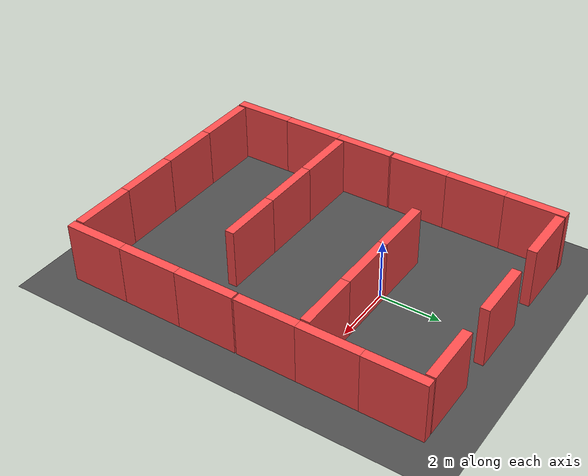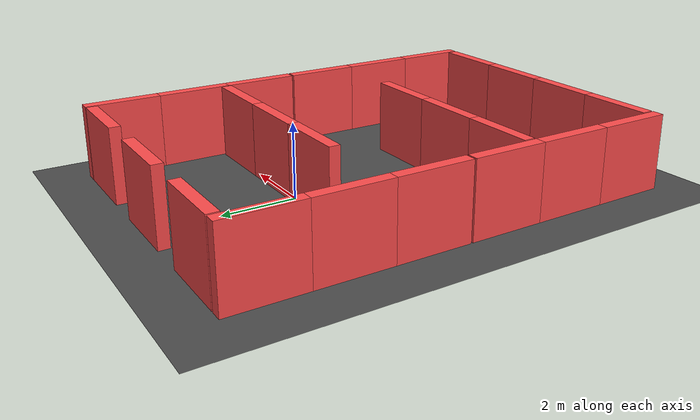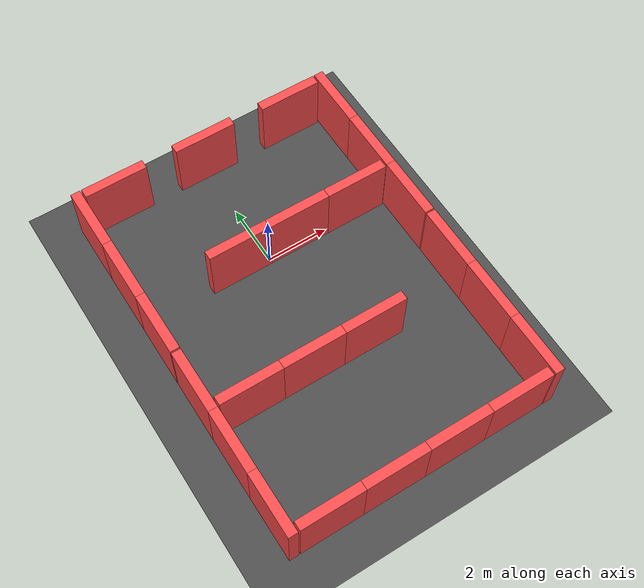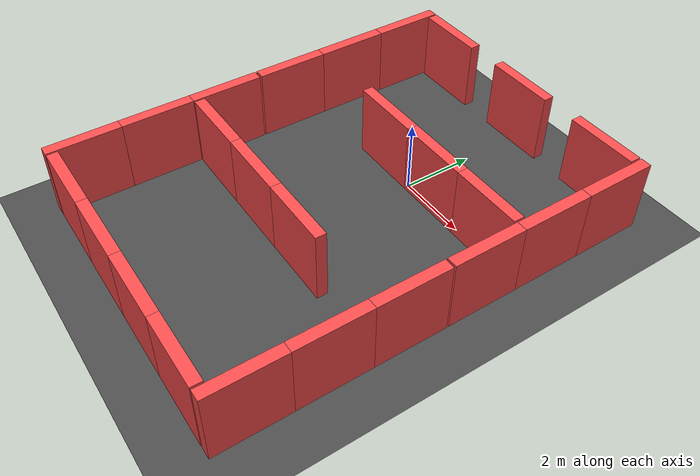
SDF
<sdf version="1.6">
 <world name="default">
  <light name="sun" type="directional">
   <pose>0 0 30 0 -0 0</pose>
   <diffuse>0.8 0.8 0.8 1</diffuse>
   <specular>0.1 0.1 0.1 1</specular>
   <attenuation>
    <range>100</range>
    <constant>0.9</constant>
    <linear>0.01</linear>
    <quadratic>0.001</quadratic>
   </attenuation>
   <direction>0 0 -1</direction>
  </light>
  <physics name="default_physics" default="0" type="ode">
   <max_step_size>0.001</max_step_size>
   <real_time_factor>1</real_time_factor>
   <real_time_update_rate>1000</real_time_update_rate>
  </physics>
  <gravity>0 0 -9.8</gravity>
  <magnetic_field>6e-06 2.3e-05 -4.2e-05</magnetic_field>
  <atmosphere type="adiabatic"/>
  <scene><ambient>0.4 0.4 0.4 1</ambient><background>0.7 0.7 0.7 1</background><shadows>1</shadows></scene>
  <spherical_coordinates>
   <surface_model>EARTH_WGS84</surface_model>
   <latitude_deg>0</latitude_deg>
   <longitude_deg>0</longitude_deg>
   <elevation>0</elevation>
   <heading_deg>0</heading_deg>
  </spherical_coordinates>
  <model name="ground_plane">
   <static>1</static>
   <link name="link">
    <collision name="collision">
     <geometry><plane><normal>0 0 1</normal><size>20 20</size></plane></geometry>
     <surface><friction><ode><mu>100</mu><mu2>50</mu2></ode></friction></surface>
    </collision>
    <visual name="visual">
     <cast_shadows>0</cast_shadows>
     <geometry><plane><normal>0 0 1</normal><size>20 20</size></plane></geometry>
     <material>
      <script>
       <uri>model://asphalt_plane/materials/scripts</uri>
       <uri>model://asphalt_plane/materials/textures</uri>
       <name>vrc/asphalt</name>
      </script>
     </material>
    </visual>
   </link>
  </model>
  <model name="red_4wall">
   <link name="link_0">
    <pose>0 -1 1 0 -0 0</pose>
    <inertial>
     <mass>5</mass>
     <inertia>
      <ixx>0.497692</ixx>
      <ixy>0</ixy>
      <ixz>0</ixz>
      <iyy>0.196615</iyy>
      <iyz>0</iyz>
      <izz>0.312713</izz>
     </inertia>
    </inertial>
    <visual name="visual">
     <geometry><box><size>0.3 2 2</size></box></geometry>
     <material>
      <lighting>1</lighting>
      <script><uri>file://media/materials/scripts/gazebo.material</uri><name>Gazebo/Grey</name></script>
      <ambient>1 0.3 0.3 1</ambient>
      <diffuse>0.7 0.7 0.7 1</diffuse>
      <specular>0.01 0.01 0.01 1</specular>
      <emissive>0 0 0 1</emissive>
      <shader type="vertex"><normal_map>__default__</normal_map></shader>
     </material>
    </visual>
    <collision name="collision">
     <geometry><box><size>0.3 2 2</size></box></geometry>
     <surface>
      <friction>
       <ode><mu>1</mu><mu2>1</mu2><fdir1>0 0 0</fdir1><slip1>0</slip1><slip2>0</slip2></ode>
       <torsional>
        <coefficient>1</coefficient>
        <patch_radius>0</patch_radius>
        <surface_radius>0</surface_radius>
        <use_patch_radius>1</use_patch_radius>
        <ode><slip>0</slip></ode>
       </torsional>
      </friction>
      <bounce><restitution_coefficient>0</restitution_coefficient><threshold>1e+06</threshold></bounce>
      <contact>
       <collide_without_contact>0</collide_without_contact>
       <collide_without_contact_bitmask>1</collide_without_contact_bitmask>
       <collide_bitmask>1</collide_bitmask>
       <ode>
        <soft_cfm>0</soft_cfm>
        <soft_erp>0.2</soft_erp>
        <kp>1e+13</kp>
        <kd>1</kd>
        <max_vel>0.01</max_vel>
        <min_depth>0</min_depth>
       </ode>
       <bullet>
        <split_impulse>1</split_impulse>
        <split_impulse_penetration_threshold>-0.01</split_impulse_penetration_threshold>
        <soft_cfm>0</soft_cfm>
        <soft_erp>0.2</soft_erp>
        <kp>1e+13</kp>
        <kd>1</kd>
       </bullet>
      </contact>
     </surface>
    </collision>
   </link>
   <link name="link_0_clone">
    <pose>0 -3 1 0 -0 0</pose>
    <inertial>
     <mass>5</mass>
     <inertia>
      <ixx>0.497692</ixx>
      <ixy>0</ixy>
      <ixz>0</ixz>
      <iyy>0.196615</iyy>
      <iyz>0</iyz>
      <izz>0.312713</izz>
     </inertia>
    </inertial>
    <visual name="visual">
     <geometry><box><size>0.3 2 2</size></box></geometry>
     <material>
      <lighting>1</lighting>
      <script><uri>file://media/materials/scripts/gazebo.material</uri><name>Gazebo/Grey</name></script>
      <ambient>1 0.3 0.3 1</ambient>
      <diffuse>0.7 0.7 0.7 1</diffuse>
      <specular>0.01 0.01 0.01 1</specular>
      <emissive>0 0 0 1</emissive>
      <shader type="vertex"><normal_map>__default__</normal_map></shader>
     </material>
    </visual>
    <collision name="collision">
     <geometry><box><size>0.3 2 2</size></box></geometry>
     <surface>
      <friction>
       <ode><mu>1</mu><mu2>1</mu2><fdir1>0 0 0</fdir1><slip1>0</slip1><slip2>0</slip2></ode>
       <torsional>
        <coefficient>1</coefficient>
        <patch_radius>0</patch_radius>
        <surface_radius>0</surface_radius>
        <use_patch_radius>1</use_patch_radius>
        <ode><slip>0</slip></ode>
       </torsional>
      </friction>
      <bounce><restitution_coefficient>0</restitution_coefficient><threshold>1e+06</threshold></bounce>
      <contact>
       <collide_without_contact>0</collide_without_contact>
       <collide_without_contact_bitmask>1</collide_without_contact_bitmask>
       <collide_bitmask>1</collide_bitmask>
       <ode>
        <soft_cfm>0</soft_cfm>
        <soft_erp>0.2</soft_erp>
        <kp>1e+13</kp>
        <kd>1</kd>
        <max_vel>0.01</max_vel>
        <min_depth>0</min_depth>
       </ode>
       <bullet>
        <split_impulse>1</split_impulse>
        <split_impulse_penetration_threshold>-0.01</split_impulse_penetration_threshold>
        <soft_cfm>0</soft_cfm>
        <soft_erp>0.2</soft_erp>
        <kp>1e+13</kp>
        <kd>1</kd>
       </bullet>
      </contact>
     </surface>
    </collision>
   </link>
   <link name="link_0_clone_0">
    <pose>-0 1 1 0 -0 0</pose>
    <inertial>
     <mass>5</mass>
     <inertia>
      <ixx>0.497692</ixx>
      <ixy>0</ixy>
      <ixz>0</ixz>
      <iyy>0.196615</iyy>
      <iyz>0</iyz>
      <izz>0.312713</izz>
     </inertia>
    </inertial>
    <visual name="visual">
     <geometry><box><size>0.3 2 2</size></box></geometry>
     <material>
      <lighting>1</lighting>
      <script><uri>file://media/materials/scripts/gazebo.material</uri><name>Gazebo/Grey</name></script>
      <ambient>1 0.3 0.3 1</ambient>
      <diffuse>0.7 0.7 0.7 1</diffuse>
      <specular>0.01 0.01 0.01 1</specular>
      <emissive>0 0 0 1</emissive>
      <shader type="vertex"><normal_map>__default__</normal_map></shader>
     </material>
    </visual>
    <collision name="collision">
     <geometry><box><size>0.3 2 2</size></box></geometry>
     <surface>
      <friction>
       <ode><mu>1</mu><mu2>1</mu2><fdir1>0 0 0</fdir1><slip1>0</slip1><slip2>0</slip2></ode>
       <torsional>
        <coefficient>1</coefficient>
        <patch_radius>0</patch_radius>
        <surface_radius>0</surface_radius>
        <use_patch_radius>1</use_patch_radius>
        <ode><slip>0</slip></ode>
       </torsional>
      </friction>
      <bounce><restitution_coefficient>0</restitution_coefficient><threshold>1e+06</threshold></bounce>
      <contact>
       <collide_without_contact>0</collide_without_contact>
       <collide_without_contact_bitmask>1</collide_without_contact_bitmask>
       <collide_bitmask>1</collide_bitmask>
       <ode>
        <soft_cfm>0</soft_cfm>
        <soft_erp>0.2</soft_erp>
        <kp>1e+13</kp>
        <kd>1</kd>
        <max_vel>0.01</max_vel>
        <min_depth>0</min_depth>
       </ode>
       <bullet>
        <split_impulse>1</split_impulse>
        <split_impulse_penetration_threshold>-0.01</split_impulse_penetration_threshold>
        <soft_cfm>0</soft_cfm>
        <soft_erp>0.2</soft_erp>
        <kp>1e+13</kp>
        <kd>1</kd>
       </bullet>
      </contact>
     </surface>
    </collision>
   </link>
   <link name="link_0_clone_1">
    <pose>-0 3 1 0 -0 0</pose>
    <inertial>
     <mass>5</mass>
     <inertia>
      <ixx>0.497692</ixx>
      <ixy>0</ixy>
      <ixz>0</ixz>
      <iyy>0.196615</iyy>
      <iyz>0</iyz>
      <izz>0.312713</izz>
     </inertia>
    </inertial>
    <visual name="visual">
     <geometry><box><size>0.3 2 2</size></box></geometry>
     <material>
      <lighting>1</lighting>
      <script><uri>file://media/materials/scripts/gazebo.material</uri><name>Gazebo/Grey</name></script>
      <ambient>1 0.3 0.3 1</ambient>
      <diffuse>0.7 0.7 0.7 1</diffuse>
      <specular>0.01 0.01 0.01 1</specular>
      <emissive>0 0 0 1</emissive>
      <shader type="vertex"><normal_map>__default__</normal_map></shader>
     </material>
    </visual>
    <collision name="collision">
     <geometry><box><size>0.3 2 2</size></box></geometry>
     <surface>
      <friction>
       <ode><mu>1</mu><mu2>1</mu2><fdir1>0 0 0</fdir1><slip1>0</slip1><slip2>0</slip2></ode>
       <torsional>
        <coefficient>1</coefficient>
        <patch_radius>0</patch_radius>
        <surface_radius>0</surface_radius>
        <use_patch_radius>1</use_patch_radius>
        <ode><slip>0</slip></ode>
       </torsional>
      </friction>
      <bounce><restitution_coefficient>0</restitution_coefficient><threshold>1e+06</threshold></bounce>
      <contact>
       <collide_without_contact>0</collide_without_contact>
       <collide_without_contact_bitmask>1</collide_without_contact_bitmask>
       <collide_bitmask>1</collide_bitmask>
       <ode>
        <soft_cfm>0</soft_cfm>
        <soft_erp>0.2</soft_erp>
        <kp>1e+13</kp>
        <kd>1</kd>
        <max_vel>0.01</max_vel>
        <min_depth>0</min_depth>
       </ode>
       <bullet>
        <split_impulse>1</split_impulse>
        <split_impulse_penetration_threshold>-0.01</split_impulse_penetration_threshold>
        <soft_cfm>0</soft_cfm>
        <soft_erp>0.2</soft_erp>
        <kp>1e+13</kp>
        <kd>1</kd>
       </bullet>
      </contact>
     </surface>
    </collision>
   </link>
   <joint name="link_0_JOINT_3" type="fixed">
    <parent>link_0</parent>
    <child>link_0_clone</child>
    <physics>
     <ode><limit><cfm>0</cfm><erp>0.2</erp></limit><suspension><cfm>0</cfm><erp>0.2</erp></suspension></ode>
    </physics>
   </joint>
   <joint name="link_0_JOINT_4" type="fixed">
    <parent>link_0</parent>
    <child>link_0_clone_0</child>
    <physics>
     <ode><limit><cfm>0</cfm><erp>0.2</erp></limit><suspension><cfm>0</cfm><erp>0.2</erp></suspension></ode>
    </physics>
   </joint>
   <joint name="link_0_clone_0_JOINT_5" type="fixed">
    <parent>link_0_clone_0</parent>
    <child>link_0_clone_1</child>
    <physics>
     <ode><limit><cfm>0</cfm><erp>0.2</erp></limit><suspension><cfm>0</cfm><erp>0.2</erp></suspension></ode>
    </physics>
   </joint>
   <static>1</static>
   <allow_auto_disable>0</allow_auto_disable>
   <pose>0 -8 0 0 -0 1.57</pose>
  </model>
  <model name="red_3wall">
   <link name="link_0">
    <pose>0 0 1 0 -0 0</pose>
    <inertial>
     <mass>5</mass>
     <inertia>
      <ixx>0.497692</ixx>
      <ixy>0</ixy>
      <ixz>0</ixz>
      <iyy>0.196615</iyy>
      <iyz>0</iyz>
      <izz>0.312713</izz>
     </inertia>
    </inertial>
    <visual name="visual">
     <geometry><box><size>0.3 2 2</size></box></geometry>
     <material>
      <lighting>1</lighting>
      <script><uri>file://media/materials/scripts/gazebo.material</uri><name>Gazebo/Grey</name></script>
      <ambient>1 0.3 0.3 1</ambient>
      <diffuse>0.7 0.7 0.7 1</diffuse>
      <specular>0.01 0.01 0.01 1</specular>
      <emissive>0 0 0 1</emissive>
      <shader type="vertex"><normal_map>__default__</normal_map></shader>
     </material>
    </visual>
    <collision name="collision">
     <geometry><box><size>0.3 2 2</size></box></geometry>
     <surface>
      <friction>
       <ode><mu>1</mu><mu2>1</mu2><fdir1>0 0 0</fdir1><slip1>0</slip1><slip2>0</slip2></ode>
       <torsional>
        <coefficient>1</coefficient>
        <patch_radius>0</patch_radius>
        <surface_radius>0</surface_radius>
        <use_patch_radius>1</use_patch_radius>
        <ode><slip>0</slip></ode>
       </torsional>
      </friction>
      <bounce><restitution_coefficient>0</restitution_coefficient><threshold>1e+06</threshold></bounce>
      <contact>
       <collide_without_contact>0</collide_without_contact>
       <collide_without_contact_bitmask>1</collide_without_contact_bitmask>
       <collide_bitmask>1</collide_bitmask>
       <ode>
        <soft_cfm>0</soft_cfm>
        <soft_erp>0.2</soft_erp>
        <kp>1e+13</kp>
        <kd>1</kd>
        <max_vel>0.01</max_vel>
        <min_depth>0</min_depth>
       </ode>
       <bullet>
        <split_impulse>1</split_impulse>
        <split_impulse_penetration_threshold>-0.01</split_impulse_penetration_threshold>
        <soft_cfm>0</soft_cfm>
        <soft_erp>0.2</soft_erp>
        <kp>1e+13</kp>
        <kd>1</kd>
       </bullet>
      </contact>
     </surface>
    </collision>
   </link>
   <link name="link_0_clone">
    <pose>0 -2 1 0 -0 0</pose>
    <inertial>
     <mass>5</mass>
     <inertia>
      <ixx>0.497692</ixx>
      <ixy>0</ixy>
      <ixz>0</ixz>
      <iyy>0.196615</iyy>
      <iyz>0</iyz>
      <izz>0.312713</izz>
     </inertia>
    </inertial>
    <visual name="visual">
     <geometry><box><size>0.3 2 2</size></box></geometry>
     <material>
      <lighting>1</lighting>
      <script><uri>file://media/materials/scripts/gazebo.material</uri><name>Gazebo/Grey</name></script>
      <ambient>1 0.3 0.3 1</ambient>
      <diffuse>0.7 0.7 0.7 1</diffuse>
      <specular>0.01 0.01 0.01 1</specular>
      <emissive>0 0 0 1</emissive>
      <shader type="vertex"><normal_map>__default__</normal_map></shader>
     </material>
    </visual>
    <collision name="collision">
     <geometry><box><size>0.3 2 2</size></box></geometry>
     <surface>
      <friction>
       <ode><mu>1</mu><mu2>1</mu2><fdir1>0 0 0</fdir1><slip1>0</slip1><slip2>0</slip2></ode>
       <torsional>
        <coefficient>1</coefficient>
        <patch_radius>0</patch_radius>
        <surface_radius>0</surface_radius>
        <use_patch_radius>1</use_patch_radius>
        <ode><slip>0</slip></ode>
       </torsional>
      </friction>
      <bounce><restitution_coefficient>0</restitution_coefficient><threshold>1e+06</threshold></bounce>
      <contact>
       <collide_without_contact>0</collide_without_contact>
       <collide_without_contact_bitmask>1</collide_without_contact_bitmask>
       <collide_bitmask>1</collide_bitmask>
       <ode>
        <soft_cfm>0</soft_cfm>
        <soft_erp>0.2</soft_erp>
        <kp>1e+13</kp>
        <kd>1</kd>
        <max_vel>0.01</max_vel>
        <min_depth>0</min_depth>
       </ode>
       <bullet>
        <split_impulse>1</split_impulse>
        <split_impulse_penetration_threshold>-0.01</split_impulse_penetration_threshold>
        <soft_cfm>0</soft_cfm>
        <soft_erp>0.2</soft_erp>
        <kp>1e+13</kp>
        <kd>1</kd>
       </bullet>
      </contact>
     </surface>
    </collision>
   </link>
   <link name="link_0_clone_0">
    <pose>-0 2 1 0 -0 0</pose>
    <inertial>
     <mass>5</mass>
     <inertia>
      <ixx>0.497692</ixx>
      <ixy>0</ixy>
      <ixz>0</ixz>
      <iyy>0.196615</iyy>
      <iyz>0</iyz>
      <izz>0.312713</izz>
     </inertia>
    </inertial>
    <visual name="visual">
     <geometry><box><size>0.3 2 2</size></box></geometry>
     <material>
      <lighting>1</lighting>
      <script><uri>file://media/materials/scripts/gazebo.material</uri><name>Gazebo/Grey</name></script>
      <ambient>1 0.3 0.3 1</ambient>
      <diffuse>0.7 0.7 0.7 1</diffuse>
      <specular>0.01 0.01 0.01 1</specular>
      <emissive>0 0 0 1</emissive>
      <shader type="vertex"><normal_map>__default__</normal_map></shader>
     </material>
    </visual>
    <collision name="collision">
     <geometry><box><size>0.3 2 2</size></box></geometry>
     <surface>
      <friction>
       <ode><mu>1</mu><mu2>1</mu2><fdir1>0 0 0</fdir1><slip1>0</slip1><slip2>0</slip2></ode>
       <torsional>
        <coefficient>1</coefficient>
        <patch_radius>0</patch_radius>
        <surface_radius>0</surface_radius>
        <use_patch_radius>1</use_patch_radius>
        <ode><slip>0</slip></ode>
       </torsional>
      </friction>
      <bounce><restitution_coefficient>0</restitution_coefficient><threshold>1e+06</threshold></bounce>
      <contact>
       <collide_without_contact>0</collide_without_contact>
       <collide_without_contact_bitmask>1</collide_without_contact_bitmask>
       <collide_bitmask>1</collide_bitmask>
       <ode>
        <soft_cfm>0</soft_cfm>
        <soft_erp>0.2</soft_erp>
        <kp>1e+13</kp>
        <kd>1</kd>
        <max_vel>0.01</max_vel>
        <min_depth>0</min_depth>
       </ode>
       <bullet>
        <split_impulse>1</split_impulse>
        <split_impulse_penetration_threshold>-0.01</split_impulse_penetration_threshold>
        <soft_cfm>0</soft_cfm>
        <soft_erp>0.2</soft_erp>
        <kp>1e+13</kp>
        <kd>1</kd>
       </bullet>
      </contact>
     </surface>
    </collision>
   </link>
   <joint name="link_0_JOINT_3" type="fixed">
    <parent>link_0</parent>
    <child>link_0_clone</child>
    <physics>
     <ode><limit><cfm>0</cfm><erp>0.2</erp></limit><suspension><cfm>0</cfm><erp>0.2</erp></suspension></ode>
    </physics>
   </joint>
   <joint name="link_0_JOINT_4" type="fixed">
    <parent>link_0</parent>
    <child>link_0_clone_0</child>
    <physics>
     <ode><limit><cfm>0</cfm><erp>0.2</erp></limit><suspension><cfm>0</cfm><erp>0.2</erp></suspension></ode>
    </physics>
   </joint>
   <static>1</static>
   <allow_auto_disable>0</allow_auto_disable>
   <pose>4.2 -5.15 0 0 -0 0</pose>
  </model>
  <model name="red_3wall_1">
   <link name="link_0">
    <pose>0 0 1 0 -0 0</pose>
    <inertial>
     <mass>5</mass>
     <inertia>
      <ixx>0.497692</ixx>
      <ixy>0</ixy>
      <ixz>0</ixz>
      <iyy>0.196615</iyy>
      <iyz>0</iyz>
      <izz>0.312713</izz>
     </inertia>
    </inertial>
    <visual name="visual">
     <geometry><box><size>0.3 2 2</size></box></geometry>
     <material>
      <lighting>1</lighting>
      <script><uri>file://media/materials/scripts/gazebo.material</uri><name>Gazebo/Grey</name></script>
      <ambient>1 0.3 0.3 1</ambient>
      <diffuse>0.7 0.7 0.7 1</diffuse>
      <specular>0.01 0.01 0.01 1</specular>
      <emissive>0 0 0 1</emissive>
      <shader type="vertex"><normal_map>__default__</normal_map></shader>
     </material>
    </visual>
    <collision name="collision">
     <geometry><box><size>0.3 2 2</size></box></geometry>
     <surface>
      <friction>
       <ode><mu>1</mu><mu2>1</mu2><fdir1>0 0 0</fdir1><slip1>0</slip1><slip2>0</slip2></ode>
       <torsional>
        <coefficient>1</coefficient>
        <patch_radius>0</patch_radius>
        <surface_radius>0</surface_radius>
        <use_patch_radius>1</use_patch_radius>
        <ode><slip>0</slip></ode>
       </torsional>
      </friction>
      <bounce><restitution_coefficient>0</restitution_coefficient><threshold>1e+06</threshold></bounce>
      <contact>
       <collide_without_contact>0</collide_without_contact>
       <collide_without_contact_bitmask>1</collide_without_contact_bitmask>
       <collide_bitmask>1</collide_bitmask>
       <ode>
        <soft_cfm>0</soft_cfm>
        <soft_erp>0.2</soft_erp>
        <kp>1e+13</kp>
        <kd>1</kd>
        <max_vel>0.01</max_vel>
        <min_depth>0</min_depth>
       </ode>
       <bullet>
        <split_impulse>1</split_impulse>
        <split_impulse_penetration_threshold>-0.01</split_impulse_penetration_threshold>
        <soft_cfm>0</soft_cfm>
        <soft_erp>0.2</soft_erp>
        <kp>1e+13</kp>
        <kd>1</kd>
       </bullet>
      </contact>
     </surface>
    </collision>
   </link>
   <link name="link_0_clone">
    <pose>0 -2 1 0 -0 0</pose>
    <inertial>
     <mass>5</mass>
     <inertia>
      <ixx>0.497692</ixx>
      <ixy>0</ixy>
      <ixz>0</ixz>
      <iyy>0.196615</iyy>
      <iyz>0</iyz>
      <izz>0.312713</izz>
     </inertia>
    </inertial>
    <visual name="visual">
     <geometry><box><size>0.3 2 2</size></box></geometry>
     <material>
      <lighting>1</lighting>
      <script><uri>file://media/materials/scripts/gazebo.material</uri><name>Gazebo/Grey</name></script>
      <ambient>1 0.3 0.3 1</ambient>
      <diffuse>0.7 0.7 0.7 1</diffuse>
      <specular>0.01 0.01 0.01 1</specular>
      <emissive>0 0 0 1</emissive>
      <shader type="vertex"><normal_map>__default__</normal_map></shader>
     </material>
    </visual>
    <collision name="collision">
     <geometry><box><size>0.3 2 2</size></box></geometry>
     <surface>
      <friction>
       <ode><mu>1</mu><mu2>1</mu2><fdir1>0 0 0</fdir1><slip1>0</slip1><slip2>0</slip2></ode>
       <torsional>
        <coefficient>1</coefficient>
        <patch_radius>0</patch_radius>
        <surface_radius>0</surface_radius>
        <use_patch_radius>1</use_patch_radius>
        <ode><slip>0</slip></ode>
       </torsional>
      </friction>
      <bounce><restitution_coefficient>0</restitution_coefficient><threshold>1e+06</threshold></bounce>
      <contact>
       <collide_without_contact>0</collide_without_contact>
       <collide_without_contact_bitmask>1</collide_without_contact_bitmask>
       <collide_bitmask>1</collide_bitmask>
       <ode>
        <soft_cfm>0</soft_cfm>
        <soft_erp>0.2</soft_erp>
        <kp>1e+13</kp>
        <kd>1</kd>
        <max_vel>0.01</max_vel>
        <min_depth>0</min_depth>
       </ode>
       <bullet>
        <split_impulse>1</split_impulse>
        <split_impulse_penetration_threshold>-0.01</split_impulse_penetration_threshold>
        <soft_cfm>0</soft_cfm>
        <soft_erp>0.2</soft_erp>
        <kp>1e+13</kp>
        <kd>1</kd>
       </bullet>
      </contact>
     </surface>
    </collision>
   </link>
   <link name="link_0_clone_0">
    <pose>-0 2 1 0 -0 0</pose>
    <inertial>
     <mass>5</mass>
     <inertia>
      <ixx>0.497692</ixx>
      <ixy>0</ixy>
      <ixz>0</ixz>
      <iyy>0.196615</iyy>
      <iyz>0</iyz>
      <izz>0.312713</izz>
     </inertia>
    </inertial>
    <visual name="visual">
     <geometry><box><size>0.3 2 2</size></box></geometry>
     <material>
      <lighting>1</lighting>
      <script><uri>file://media/materials/scripts/gazebo.material</uri><name>Gazebo/Grey</name></script>
      <ambient>1 0.3 0.3 1</ambient>
      <diffuse>0.7 0.7 0.7 1</diffuse>
      <specular>0.01 0.01 0.01 1</specular>
      <emissive>0 0 0 1</emissive>
      <shader type="vertex"><normal_map>__default__</normal_map></shader>
     </material>
    </visual>
    <collision name="collision">
     <geometry><box><size>0.3 2 2</size></box></geometry>
     <surface>
      <friction>
       <ode><mu>1</mu><mu2>1</mu2><fdir1>0 0 0</fdir1><slip1>0</slip1><slip2>0</slip2></ode>
       <torsional>
        <coefficient>1</coefficient>
        <patch_radius>0</patch_radius>
        <surface_radius>0</surface_radius>
        <use_patch_radius>1</use_patch_radius>
        <ode><slip>0</slip></ode>
       </torsional>
      </friction>
      <bounce><restitution_coefficient>0</restitution_coefficient><threshold>1e+06</threshold></bounce>
      <contact>
       <collide_without_contact>0</collide_without_contact>
       <collide_without_contact_bitmask>1</collide_without_contact_bitmask>
       <collide_bitmask>1</collide_bitmask>
       <ode>
        <soft_cfm>0</soft_cfm>
        <soft_erp>0.2</soft_erp>
        <kp>1e+13</kp>
        <kd>1</kd>
        <max_vel>0.01</max_vel>
        <min_depth>0</min_depth>
       </ode>
       <bullet>
        <split_impulse>1</split_impulse>
        <split_impulse_penetration_threshold>-0.01</split_impulse_penetration_threshold>
        <soft_cfm>0</soft_cfm>
        <soft_erp>0.2</soft_erp>
        <kp>1e+13</kp>
        <kd>1</kd>
       </bullet>
      </contact>
     </surface>
    </collision>
   </link>
   <joint name="link_0_JOINT_3" type="fixed">
    <parent>link_0</parent>
    <child>link_0_clone</child>
    <physics>
     <ode><limit><cfm>0</cfm><erp>0.2</erp></limit><suspension><cfm>0</cfm><erp>0.2</erp></suspension></ode>
    </physics>
   </joint>
   <joint name="link_0_JOINT_4" type="fixed">
    <parent>link_0</parent>
    <child>link_0_clone_0</child>
    <physics>
     <ode><limit><cfm>0</cfm><erp>0.2</erp></limit><suspension><cfm>0</cfm><erp>0.2</erp></suspension></ode>
    </physics>
   </joint>
   <static>1</static>
   <allow_auto_disable>0</allow_auto_disable>
   <pose>-4.2 -5.15 0 0 -0 0</pose>
  </model>
  <model name="red_3wall_2">
   <link name="link_0">
    <pose>0 0 1 0 -0 0</pose>
    <inertial>
     <mass>5</mass>
     <inertia>
      <ixx>0.497692</ixx>
      <ixy>0</ixy>
      <ixz>0</ixz>
      <iyy>0.196615</iyy>
      <iyz>0</iyz>
      <izz>0.312713</izz>
     </inertia>
    </inertial>
    <visual name="visual">
     <geometry><box><size>0.3 2 2</size></box></geometry>
     <material>
      <lighting>1</lighting>
      <script><uri>file://media/materials/scripts/gazebo.material</uri><name>Gazebo/Grey</name></script>
      <ambient>1 0.3 0.3 1</ambient>
      <diffuse>0.7 0.7 0.7 1</diffuse>
      <specular>0.01 0.01 0.01 1</specular>
      <emissive>0 0 0 1</emissive>
      <shader type="vertex"><normal_map>__default__</normal_map></shader>
     </material>
    </visual>
    <collision name="collision">
     <geometry><box><size>0.3 2 2</size></box></geometry>
     <surface>
      <friction>
       <ode><mu>1</mu><mu2>1</mu2><fdir1>0 0 0</fdir1><slip1>0</slip1><slip2>0</slip2></ode>
       <torsional>
        <coefficient>1</coefficient>
        <patch_radius>0</patch_radius>
        <surface_radius>0</surface_radius>
        <use_patch_radius>1</use_patch_radius>
        <ode><slip>0</slip></ode>
       </torsional>
      </friction>
      <bounce><restitution_coefficient>0</restitution_coefficient><threshold>1e+06</threshold></bounce>
      <contact>
       <collide_without_contact>0</collide_without_contact>
       <collide_without_contact_bitmask>1</collide_without_contact_bitmask>
       <collide_bitmask>1</collide_bitmask>
       <ode>
        <soft_cfm>0</soft_cfm>
        <soft_erp>0.2</soft_erp>
        <kp>1e+13</kp>
        <kd>1</kd>
        <max_vel>0.01</max_vel>
        <min_depth>0</min_depth>
       </ode>
       <bullet>
        <split_impulse>1</split_impulse>
        <split_impulse_penetration_threshold>-0.01</split_impulse_penetration_threshold>
        <soft_cfm>0</soft_cfm>
        <soft_erp>0.2</soft_erp>
        <kp>1e+13</kp>
        <kd>1</kd>
       </bullet>
      </contact>
     </surface>
    </collision>
   </link>
   <link name="link_0_clone">
    <pose>0 -2 1 0 -0 0</pose>
    <inertial>
     <mass>5</mass>
     <inertia>
      <ixx>0.497692</ixx>
      <ixy>0</ixy>
      <ixz>0</ixz>
      <iyy>0.196615</iyy>
      <iyz>0</iyz>
      <izz>0.312713</izz>
     </inertia>
    </inertial>
    <visual name="visual">
     <geometry><box><size>0.3 2 2</size></box></geometry>
     <material>
      <lighting>1</lighting>
      <script><uri>file://media/materials/scripts/gazebo.material</uri><name>Gazebo/Grey</name></script>
      <ambient>1 0.3 0.3 1</ambient>
      <diffuse>0.7 0.7 0.7 1</diffuse>
      <specular>0.01 0.01 0.01 1</specular>
      <emissive>0 0 0 1</emissive>
      <shader type="vertex"><normal_map>__default__</normal_map></shader>
     </material>
    </visual>
    <collision name="collision">
     <geometry><box><size>0.3 2 2</size></box></geometry>
     <surface>
      <friction>
       <ode><mu>1</mu><mu2>1</mu2><fdir1>0 0 0</fdir1><slip1>0</slip1><slip2>0</slip2></ode>
       <torsional>
        <coefficient>1</coefficient>
        <patch_radius>0</patch_radius>
        <surface_radius>0</surface_radius>
        <use_patch_radius>1</use_patch_radius>
        <ode><slip>0</slip></ode>
       </torsional>
      </friction>
      <bounce><restitution_coefficient>0</restitution_coefficient><threshold>1e+06</threshold></bounce>
      <contact>
       <collide_without_contact>0</collide_without_contact>
       <collide_without_contact_bitmask>1</collide_without_contact_bitmask>
       <collide_bitmask>1</collide_bitmask>
       <ode>
        <soft_cfm>0</soft_cfm>
        <soft_erp>0.2</soft_erp>
        <kp>1e+13</kp>
        <kd>1</kd>
        <max_vel>0.01</max_vel>
        <min_depth>0</min_depth>
       </ode>
       <bullet>
        <split_impulse>1</split_impulse>
        <split_impulse_penetration_threshold>-0.01</split_impulse_penetration_threshold>
        <soft_cfm>0</soft_cfm>
        <soft_erp>0.2</soft_erp>
        <kp>1e+13</kp>
        <kd>1</kd>
       </bullet>
      </contact>
     </surface>
    </collision>
   </link>
   <link name="link_0_clone_0">
    <pose>-0 2 1 0 -0 0</pose>
    <inertial>
     <mass>5</mass>
     <inertia>
      <ixx>0.497692</ixx>
      <ixy>0</ixy>
      <ixz>0</ixz>
      <iyy>0.196615</iyy>
      <iyz>0</iyz>
      <izz>0.312713</izz>
     </inertia>
    </inertial>
    <visual name="visual">
     <geometry><box><size>0.3 2 2</size></box></geometry>
     <material>
      <lighting>1</lighting>
      <script><uri>file://media/materials/scripts/gazebo.material</uri><name>Gazebo/Grey</name></script>
      <ambient>1 0.3 0.3 1</ambient>
      <diffuse>0.7 0.7 0.7 1</diffuse>
      <specular>0.01 0.01 0.01 1</specular>
      <emissive>0 0 0 1</emissive>
      <shader type="vertex"><normal_map>__default__</normal_map></shader>
     </material>
    </visual>
    <collision name="collision">
     <geometry><box><size>0.3 2 2</size></box></geometry>
     <surface>
      <friction>
       <ode><mu>1</mu><mu2>1</mu2><fdir1>0 0 0</fdir1><slip1>0</slip1><slip2>0</slip2></ode>
       <torsional>
        <coefficient>1</coefficient>
        <patch_radius>0</patch_radius>
        <surface_radius>0</surface_radius>
        <use_patch_radius>1</use_patch_radius>
        <ode><slip>0</slip></ode>
       </torsional>
      </friction>
      <bounce><restitution_coefficient>0</restitution_coefficient><threshold>1e+06</threshold></bounce>
      <contact>
       <collide_without_contact>0</collide_without_contact>
       <collide_without_contact_bitmask>1</collide_without_contact_bitmask>
       <collide_bitmask>1</collide_bitmask>
       <ode>
        <soft_cfm>0</soft_cfm>
        <soft_erp>0.2</soft_erp>
        <kp>1e+13</kp>
        <kd>1</kd>
        <max_vel>0.01</max_vel>
        <min_depth>0</min_depth>
       </ode>
       <bullet>
        <split_impulse>1</split_impulse>
        <split_impulse_penetration_threshold>-0.01</split_impulse_penetration_threshold>
        <soft_cfm>0</soft_cfm>
        <soft_erp>0.2</soft_erp>
        <kp>1e+13</kp>
        <kd>1</kd>
       </bullet>
      </contact>
     </surface>
    </collision>
   </link>
   <joint name="link_0_JOINT_3" type="fixed">
    <parent>link_0</parent>
    <child>link_0_clone</child>
    <physics>
     <ode><limit><cfm>0</cfm><erp>0.2</erp></limit><suspension><cfm>0</cfm><erp>0.2</erp></suspension></ode>
    </physics>
   </joint>
   <joint name="link_0_JOINT_4" type="fixed">
    <parent>link_0</parent>
    <child>link_0_clone_0</child>
    <physics>
     <ode><limit><cfm>0</cfm><erp>0.2</erp></limit><suspension><cfm>0</cfm><erp>0.2</erp></suspension></ode>
    </physics>
   </joint>
   <static>1</static>
   <allow_auto_disable>0</allow_auto_disable>
   <pose>-4.2 0.9 0 0 -0 0</pose>
  </model>
  <model name="red_3wall_5">
   <link name="link_0">
    <pose>0 0 1 0 -0 0</pose>
    <inertial>
     <mass>5</mass>
     <inertia>
      <ixx>0.497692</ixx>
      <ixy>0</ixy>
      <ixz>0</ixz>
      <iyy>0.196615</iyy>
      <iyz>0</iyz>
      <izz>0.312713</izz>
     </inertia>
    </inertial>
    <visual name="visual">
     <geometry><box><size>0.3 2 2</size></box></geometry>
     <material>
      <lighting>1</lighting>
      <script><uri>file://media/materials/scripts/gazebo.material</uri><name>Gazebo/Grey</name></script>
      <ambient>1 0.3 0.3 1</ambient>
      <diffuse>0.7 0.7 0.7 1</diffuse>
      <specular>0.01 0.01 0.01 1</specular>
      <emissive>0 0 0 1</emissive>
      <shader type="vertex"><normal_map>__default__</normal_map></shader>
     </material>
    </visual>
    <collision name="collision">
     <geometry><box><size>0.3 2 2</size></box></geometry>
     <surface>
      <friction>
       <ode><mu>1</mu><mu2>1</mu2><fdir1>0 0 0</fdir1><slip1>0</slip1><slip2>0</slip2></ode>
       <torsional>
        <coefficient>1</coefficient>
        <patch_radius>0</patch_radius>
        <surface_radius>0</surface_radius>
        <use_patch_radius>1</use_patch_radius>
        <ode><slip>0</slip></ode>
       </torsional>
      </friction>
      <bounce><restitution_coefficient>0</restitution_coefficient><threshold>1e+06</threshold></bounce>
      <contact>
       <collide_without_contact>0</collide_without_contact>
       <collide_without_contact_bitmask>1</collide_without_contact_bitmask>
       <collide_bitmask>1</collide_bitmask>
       <ode>
        <soft_cfm>0</soft_cfm>
        <soft_erp>0.2</soft_erp>
        <kp>1e+13</kp>
        <kd>1</kd>
        <max_vel>0.01</max_vel>
        <min_depth>0</min_depth>
       </ode>
       <bullet>
        <split_impulse>1</split_impulse>
        <split_impulse_penetration_threshold>-0.01</split_impulse_penetration_threshold>
        <soft_cfm>0</soft_cfm>
        <soft_erp>0.2</soft_erp>
        <kp>1e+13</kp>
        <kd>1</kd>
       </bullet>
      </contact>
     </surface>
    </collision>
   </link>
   <link name="link_0_clone">
    <pose>0 -2 1 0 -0 0</pose>
    <inertial>
     <mass>5</mass>
     <inertia>
      <ixx>0.497692</ixx>
      <ixy>0</ixy>
      <ixz>0</ixz>
      <iyy>0.196615</iyy>
      <iyz>0</iyz>
      <izz>0.312713</izz>
     </inertia>
    </inertial>
    <visual name="visual">
     <geometry><box><size>0.3 2 2</size></box></geometry>
     <material>
      <lighting>1</lighting>
      <script><uri>file://media/materials/scripts/gazebo.material</uri><name>Gazebo/Grey</name></script>
      <ambient>1 0.3 0.3 1</ambient>
      <diffuse>0.7 0.7 0.7 1</diffuse>
      <specular>0.01 0.01 0.01 1</specular>
      <emissive>0 0 0 1</emissive>
      <shader type="vertex"><normal_map>__default__</normal_map></shader>
     </material>
    </visual>
    <collision name="collision">
     <geometry><box><size>0.3 2 2</size></box></geometry>
     <surface>
      <friction>
       <ode><mu>1</mu><mu2>1</mu2><fdir1>0 0 0</fdir1><slip1>0</slip1><slip2>0</slip2></ode>
       <torsional>
        <coefficient>1</coefficient>
        <patch_radius>0</patch_radius>
        <surface_radius>0</surface_radius>
        <use_patch_radius>1</use_patch_radius>
        <ode><slip>0</slip></ode>
       </torsional>
      </friction>
      <bounce><restitution_coefficient>0</restitution_coefficient><threshold>1e+06</threshold></bounce>
      <contact>
       <collide_without_contact>0</collide_without_contact>
       <collide_without_contact_bitmask>1</collide_without_contact_bitmask>
       <collide_bitmask>1</collide_bitmask>
       <ode>
        <soft_cfm>0</soft_cfm>
        <soft_erp>0.2</soft_erp>
        <kp>1e+13</kp>
        <kd>1</kd>
        <max_vel>0.01</max_vel>
        <min_depth>0</min_depth>
       </ode>
       <bullet>
        <split_impulse>1</split_impulse>
        <split_impulse_penetration_threshold>-0.01</split_impulse_penetration_threshold>
        <soft_cfm>0</soft_cfm>
        <soft_erp>0.2</soft_erp>
        <kp>1e+13</kp>
        <kd>1</kd>
       </bullet>
      </contact>
     </surface>
    </collision>
   </link>
   <link name="link_0_clone_0">
    <pose>-0 2 1 0 -0 0</pose>
    <inertial>
     <mass>5</mass>
     <inertia>
      <ixx>0.497692</ixx>
      <ixy>0</ixy>
      <ixz>0</ixz>
      <iyy>0.196615</iyy>
      <iyz>0</iyz>
      <izz>0.312713</izz>
     </inertia>
    </inertial>
    <visual name="visual">
     <geometry><box><size>0.3 2 2</size></box></geometry>
     <material>
      <lighting>1</lighting>
      <script><uri>file://media/materials/scripts/gazebo.material</uri><name>Gazebo/Grey</name></script>
      <ambient>1 0.3 0.3 1</ambient>
      <diffuse>0.7 0.7 0.7 1</diffuse>
      <specular>0.01 0.01 0.01 1</specular>
      <emissive>0 0 0 1</emissive>
      <shader type="vertex"><normal_map>__default__</normal_map></shader>
     </material>
    </visual>
    <collision name="collision">
     <geometry><box><size>0.3 2 2</size></box></geometry>
     <surface>
      <friction>
       <ode><mu>1</mu><mu2>1</mu2><fdir1>0 0 0</fdir1><slip1>0</slip1><slip2>0</slip2></ode>
       <torsional>
        <coefficient>1</coefficient>
        <patch_radius>0</patch_radius>
        <surface_radius>0</surface_radius>
        <use_patch_radius>1</use_patch_radius>
        <ode><slip>0</slip></ode>
       </torsional>
      </friction>
      <bounce><restitution_coefficient>0</restitution_coefficient><threshold>1e+06</threshold></bounce>
      <contact>
       <collide_without_contact>0</collide_without_contact>
       <collide_without_contact_bitmask>1</collide_without_contact_bitmask>
       <collide_bitmask>1</collide_bitmask>
       <ode>
        <soft_cfm>0</soft_cfm>
        <soft_erp>0.2</soft_erp>
        <kp>1e+13</kp>
        <kd>1</kd>
        <max_vel>0.01</max_vel>
        <min_depth>0</min_depth>
       </ode>
       <bullet>
        <split_impulse>1</split_impulse>
        <split_impulse_penetration_threshold>-0.01</split_impulse_penetration_threshold>
        <soft_cfm>0</soft_cfm>
        <soft_erp>0.2</soft_erp>
        <kp>1e+13</kp>
        <kd>1</kd>
       </bullet>
      </contact>
     </surface>
    </collision>
   </link>
   <joint name="link_0_JOINT_3" type="fixed">
    <parent>link_0</parent>
    <child>link_0_clone</child>
    <physics>
     <ode><limit><cfm>0</cfm><erp>0.2</erp></limit><suspension><cfm>0</cfm><erp>0.2</erp></suspension></ode>
    </physics>
   </joint>
   <joint name="link_0_JOINT_4" type="fixed">
    <parent>link_0</parent>
    <child>link_0_clone_0</child>
    <physics>
     <ode><limit><cfm>0</cfm><erp>0.2</erp></limit><suspension><cfm>0</cfm><erp>0.2</erp></suspension></ode>
    </physics>
   </joint>
   <static>1</static>
   <allow_auto_disable>0</allow_auto_disable>
   <pose>-1 -4 0 0 -0 1.57</pose>
  </model>
  <model name="red_1wall_2_0">
   <link name="link_0">
    <pose>0 0 1 0 -0 0</pose>
    <inertial>
     <mass>5</mass>
     <inertia>
      <ixx>0.497692</ixx>
      <ixy>0</ixy>
      <ixz>0</ixz>
      <iyy>0.196615</iyy>
      <iyz>0</iyz>
      <izz>0.312713</izz>
     </inertia>
    </inertial>
    <visual name="visual">
     <geometry><box><size>0.3 2 2</size></box></geometry>
     <material>
      <lighting>1</lighting>
      <script><uri>file://media/materials/scripts/gazebo.material</uri><name>Gazebo/Grey</name></script>
      <ambient>1 0.3 0.3 1</ambient>
      <diffuse>0.7 0.7 0.7 1</diffuse>
      <specular>0.01 0.01 0.01 1</specular>
      <emissive>0 0 0 1</emissive>
      <shader type="vertex"><normal_map>__default__</normal_map></shader>
     </material>
    </visual>
    <collision name="collision">
     <geometry><box><size>0.3 2 2</size></box></geometry>
     <surface>
      <friction>
       <ode><mu>1</mu><mu2>1</mu2><fdir1>0 0 0</fdir1><slip1>0</slip1><slip2>0</slip2></ode>
       <torsional>
        <coefficient>1</coefficient>
        <patch_radius>0</patch_radius>
        <surface_radius>0</surface_radius>
        <use_patch_radius>1</use_patch_radius>
        <ode><slip>0</slip></ode>
       </torsional>
      </friction>
      <bounce><restitution_coefficient>0</restitution_coefficient><threshold>1e+06</threshold></bounce>
      <contact>
       <collide_without_contact>0</collide_without_contact>
       <collide_without_contact_bitmask>1</collide_without_contact_bitmask>
       <collide_bitmask>1</collide_bitmask>
       <ode>
        <soft_cfm>0</soft_cfm>
        <soft_erp>0.2</soft_erp>
        <kp>1e+13</kp>
        <kd>1</kd>
        <max_vel>0.01</max_vel>
        <min_depth>0</min_depth>
       </ode>
       <bullet>
        <split_impulse>1</split_impulse>
        <split_impulse_penetration_threshold>-0.01</split_impulse_penetration_threshold>
        <soft_cfm>0</soft_cfm>
        <soft_erp>0.2</soft_erp>
        <kp>1e+13</kp>
        <kd>1</kd>
       </bullet>
      </contact>
     </surface>
    </collision>
   </link>
   <static>1</static>
   <allow_auto_disable>0</allow_auto_disable>
   <pose>3 3.75 0 0 -0 1.57</pose>
  </model>
  <model name="red_1wall_1_0">
   <link name="link_0">
    <pose>0 0 1 0 -0 0</pose>
    <inertial>
     <mass>5</mass>
     <inertia>
      <ixx>0.497692</ixx>
      <ixy>0</ixy>
      <ixz>0</ixz>
      <iyy>0.196615</iyy>
      <iyz>0</iyz>
      <izz>0.312713</izz>
     </inertia>
    </inertial>
    <visual name="visual">
     <geometry><box><size>0.3 2 2</size></box></geometry>
     <material>
      <lighting>1</lighting>
      <script><uri>file://media/materials/scripts/gazebo.material</uri><name>Gazebo/Grey</name></script>
      <ambient>1 0.3 0.3 1</ambient>
      <diffuse>0.7 0.7 0.7 1</diffuse>
      <specular>0.01 0.01 0.01 1</specular>
      <emissive>0 0 0 1</emissive>
      <shader type="vertex"><normal_map>__default__</normal_map></shader>
     </material>
    </visual>
    <collision name="collision">
     <geometry><box><size>0.3 2 2</size></box></geometry>
     <surface>
      <friction>
       <ode><mu>1</mu><mu2>1</mu2><fdir1>0 0 0</fdir1><slip1>0</slip1><slip2>0</slip2></ode>
       <torsional>
        <coefficient>1</coefficient>
        <patch_radius>0</patch_radius>
        <surface_radius>0</surface_radius>
        <use_patch_radius>1</use_patch_radius>
        <ode><slip>0</slip></ode>
       </torsional>
      </friction>
      <bounce><restitution_coefficient>0</restitution_coefficient><threshold>1e+06</threshold></bounce>
      <contact>
       <collide_without_contact>0</collide_without_contact>
       <collide_without_contact_bitmask>1</collide_without_contact_bitmask>
       <collide_bitmask>1</collide_bitmask>
       <ode>
        <soft_cfm>0</soft_cfm>
        <soft_erp>0.2</soft_erp>
        <kp>1e+13</kp>
        <kd>1</kd>
        <max_vel>0.01</max_vel>
        <min_depth>0</min_depth>
       </ode>
       <bullet>
        <split_impulse>1</split_impulse>
        <split_impulse_penetration_threshold>-0.01</split_impulse_penetration_threshold>
        <soft_cfm>0</soft_cfm>
        <soft_erp>0.2</soft_erp>
        <kp>1e+13</kp>
        <kd>1</kd>
       </bullet>
      </contact>
     </surface>
    </collision>
   </link>
   <static>1</static>
   <allow_auto_disable>0</allow_auto_disable>
   <pose>0 3.75 0 0 -0 1.57</pose>
  </model>
  <model name="red_1wall_0_0">
   <link name="link_0">
    <pose>0 0 1 0 -0 0</pose>
    <inertial>
     <mass>5</mass>
     <inertia>
      <ixx>0.497692</ixx>
      <ixy>0</ixy>
      <ixz>0</ixz>
      <iyy>0.196615</iyy>
      <iyz>0</iyz>
      <izz>0.312713</izz>
     </inertia>
    </inertial>
    <visual name="visual">
     <geometry><box><size>0.3 2 2</size></box></geometry>
     <material>
      <lighting>1</lighting>
      <script><uri>file://media/materials/scripts/gazebo.material</uri><name>Gazebo/Grey</name></script>
      <ambient>1 0.3 0.3 1</ambient>
      <diffuse>0.7 0.7 0.7 1</diffuse>
      <specular>0.01 0.01 0.01 1</specular>
      <emissive>0 0 0 1</emissive>
      <shader type="vertex"><normal_map>__default__</normal_map></shader>
     </material>
    </visual>
    <collision name="collision">
     <geometry><box><size>0.3 2 2</size></box></geometry>
     <surface>
      <friction>
       <ode><mu>1</mu><mu2>1</mu2><fdir1>0 0 0</fdir1><slip1>0</slip1><slip2>0</slip2></ode>
       <torsional>
        <coefficient>1</coefficient>
        <patch_radius>0</patch_radius>
        <surface_radius>0</surface_radius>
        <use_patch_radius>1</use_patch_radius>
        <ode><slip>0</slip></ode>
       </torsional>
      </friction>
      <bounce><restitution_coefficient>0</restitution_coefficient><threshold>1e+06</threshold></bounce>
      <contact>
       <collide_without_contact>0</collide_without_contact>
       <collide_without_contact_bitmask>1</collide_without_contact_bitmask>
       <collide_bitmask>1</collide_bitmask>
       <ode>
        <soft_cfm>0</soft_cfm>
        <soft_erp>0.2</soft_erp>
        <kp>1e+13</kp>
        <kd>1</kd>
        <max_vel>0.01</max_vel>
        <min_depth>0</min_depth>
       </ode>
       <bullet>
        <split_impulse>1</split_impulse>
        <split_impulse_penetration_threshold>-0.01</split_impulse_penetration_threshold>
        <soft_cfm>0</soft_cfm>
        <soft_erp>0.2</soft_erp>
        <kp>1e+13</kp>
        <kd>1</kd>
       </bullet>
      </contact>
     </surface>
    </collision>
   </link>
   <static>1</static>
   <allow_auto_disable>0</allow_auto_disable>
   <pose>-3 3.75 0 0 -0 1.57</pose>
  </model>
  <model name="red_3wall_4_0">
   <link name="link_0">
    <pose>0 0 1 0 -0 0</pose>
    <inertial>
     <mass>5</mass>
     <inertia>
      <ixx>0.497692</ixx>
      <ixy>0</ixy>
      <ixz>0</ixz>
      <iyy>0.196615</iyy>
      <iyz>0</iyz>
      <izz>0.312713</izz>
     </inertia>
    </inertial>
    <visual name="visual">
     <geometry><box><size>0.3 2 2</size></box></geometry>
     <material>
      <lighting>1</lighting>
      <script><uri>file://media/materials/scripts/gazebo.material</uri><name>Gazebo/Grey</name></script>
      <ambient>1 0.3 0.3 1</ambient>
      <diffuse>0.7 0.7 0.7 1</diffuse>
      <specular>0.01 0.01 0.01 1</specular>
      <emissive>0 0 0 1</emissive>
      <shader type="vertex"><normal_map>__default__</normal_map></shader>
     </material>
    </visual>
    <collision name="collision">
     <geometry><box><size>0.3 2 2</size></box></geometry>
     <surface>
      <friction>
       <ode><mu>1</mu><mu2>1</mu2><fdir1>0 0 0</fdir1><slip1>0</slip1><slip2>0</slip2></ode>
       <torsional>
        <coefficient>1</coefficient>
        <patch_radius>0</patch_radius>
        <surface_radius>0</surface_radius>
        <use_patch_radius>1</use_patch_radius>
        <ode><slip>0</slip></ode>
       </torsional>
      </friction>
      <bounce><restitution_coefficient>0</restitution_coefficient><threshold>1e+06</threshold></bounce>
      <contact>
       <collide_without_contact>0</collide_without_contact>
       <collide_without_contact_bitmask>1</collide_without_contact_bitmask>
       <collide_bitmask>1</collide_bitmask>
       <ode>
        <soft_cfm>0</soft_cfm>
        <soft_erp>0.2</soft_erp>
        <kp>1e+13</kp>
        <kd>1</kd>
        <max_vel>0.01</max_vel>
        <min_depth>0</min_depth>
       </ode>
       <bullet>
        <split_impulse>1</split_impulse>
        <split_impulse_penetration_threshold>-0.01</split_impulse_penetration_threshold>
        <soft_cfm>0</soft_cfm>
        <soft_erp>0.2</soft_erp>
        <kp>1e+13</kp>
        <kd>1</kd>
       </bullet>
      </contact>
     </surface>
    </collision>
   </link>
   <link name="link_0_clone">
    <pose>0 -2 1 0 -0 0</pose>
    <inertial>
     <mass>5</mass>
     <inertia>
      <ixx>0.497692</ixx>
      <ixy>0</ixy>
      <ixz>0</ixz>
      <iyy>0.196615</iyy>
      <iyz>0</iyz>
      <izz>0.312713</izz>
     </inertia>
    </inertial>
    <visual name="visual">
     <geometry><box><size>0.3 2 2</size></box></geometry>
     <material>
      <lighting>1</lighting>
      <script><uri>file://media/materials/scripts/gazebo.material</uri><name>Gazebo/Grey</name></script>
      <ambient>1 0.3 0.3 1</ambient>
      <diffuse>0.7 0.7 0.7 1</diffuse>
      <specular>0.01 0.01 0.01 1</specular>
      <emissive>0 0 0 1</emissive>
      <shader type="vertex"><normal_map>__default__</normal_map></shader>
     </material>
    </visual>
    <collision name="collision">
     <geometry><box><size>0.3 2 2</size></box></geometry>
     <surface>
      <friction>
       <ode><mu>1</mu><mu2>1</mu2><fdir1>0 0 0</fdir1><slip1>0</slip1><slip2>0</slip2></ode>
       <torsional>
        <coefficient>1</coefficient>
        <patch_radius>0</patch_radius>
        <surface_radius>0</surface_radius>
        <use_patch_radius>1</use_patch_radius>
        <ode><slip>0</slip></ode>
       </torsional>
      </friction>
      <bounce><restitution_coefficient>0</restitution_coefficient><threshold>1e+06</threshold></bounce>
      <contact>
       <collide_without_contact>0</collide_without_contact>
       <collide_without_contact_bitmask>1</collide_without_contact_bitmask>
       <collide_bitmask>1</collide_bitmask>
       <ode>
        <soft_cfm>0</soft_cfm>
        <soft_erp>0.2</soft_erp>
        <kp>1e+13</kp>
        <kd>1</kd>
        <max_vel>0.01</max_vel>
        <min_depth>0</min_depth>
       </ode>
       <bullet>
        <split_impulse>1</split_impulse>
        <split_impulse_penetration_threshold>-0.01</split_impulse_penetration_threshold>
        <soft_cfm>0</soft_cfm>
        <soft_erp>0.2</soft_erp>
        <kp>1e+13</kp>
        <kd>1</kd>
       </bullet>
      </contact>
     </surface>
    </collision>
   </link>
   <link name="link_0_clone_0">
    <pose>-0 2 1 0 -0 0</pose>
    <inertial>
     <mass>5</mass>
     <inertia>
      <ixx>0.497692</ixx>
      <ixy>0</ixy>
      <ixz>0</ixz>
      <iyy>0.196615</iyy>
      <iyz>0</iyz>
      <izz>0.312713</izz>
     </inertia>
    </inertial>
    <visual name="visual">
     <geometry><box><size>0.3 2 2</size></box></geometry>
     <material>
      <lighting>1</lighting>
      <script><uri>file://media/materials/scripts/gazebo.material</uri><name>Gazebo/Grey</name></script>
      <ambient>1 0.3 0.3 1</ambient>
      <diffuse>0.7 0.7 0.7 1</diffuse>
      <specular>0.01 0.01 0.01 1</specular>
      <emissive>0 0 0 1</emissive>
      <shader type="vertex"><normal_map>__default__</normal_map></shader>
     </material>
    </visual>
    <collision name="collision">
     <geometry><box><size>0.3 2 2</size></box></geometry>
     <surface>
      <friction>
       <ode><mu>1</mu><mu2>1</mu2><fdir1>0 0 0</fdir1><slip1>0</slip1><slip2>0</slip2></ode>
       <torsional>
        <coefficient>1</coefficient>
        <patch_radius>0</patch_radius>
        <surface_radius>0</surface_radius>
        <use_patch_radius>1</use_patch_radius>
        <ode><slip>0</slip></ode>
       </torsional>
      </friction>
      <bounce><restitution_coefficient>0</restitution_coefficient><threshold>1e+06</threshold></bounce>
      <contact>
       <collide_without_contact>0</collide_without_contact>
       <collide_without_contact_bitmask>1</collide_without_contact_bitmask>
       <collide_bitmask>1</collide_bitmask>
       <ode>
        <soft_cfm>0</soft_cfm>
        <soft_erp>0.2</soft_erp>
        <kp>1e+13</kp>
        <kd>1</kd>
        <max_vel>0.01</max_vel>
        <min_depth>0</min_depth>
       </ode>
       <bullet>
        <split_impulse>1</split_impulse>
        <split_impulse_penetration_threshold>-0.01</split_impulse_penetration_threshold>
        <soft_cfm>0</soft_cfm>
        <soft_erp>0.2</soft_erp>
        <kp>1e+13</kp>
        <kd>1</kd>
       </bullet>
      </contact>
     </surface>
    </collision>
   </link>
   <joint name="link_0_JOINT_3" type="fixed">
    <parent>link_0</parent>
    <child>link_0_clone</child>
    <physics>
     <ode><limit><cfm>0</cfm><erp>0.2</erp></limit><suspension><cfm>0</cfm><erp>0.2</erp></suspension></ode>
    </physics>
   </joint>
   <joint name="link_0_JOINT_4" type="fixed">
    <parent>link_0</parent>
    <child>link_0_clone_0</child>
    <physics>
     <ode><limit><cfm>0</cfm><erp>0.2</erp></limit><suspension><cfm>0</cfm><erp>0.2</erp></suspension></ode>
    </physics>
   </joint>
   <static>1</static>
   <allow_auto_disable>0</allow_auto_disable>
   <pose>1 0 0 0 -0 1.57</pose>
  </model>
  <model name="red_3wall_0_0">
   <link name="link_0">
    <pose>0 0 1 0 -0 0</pose>
    <inertial>
     <mass>5</mass>
     <inertia>
      <ixx>0.497692</ixx>
      <ixy>0</ixy>
      <ixz>0</ixz>
      <iyy>0.196615</iyy>
      <iyz>0</iyz>
      <izz>0.312713</izz>
     </inertia>
    </inertial>
    <visual name="visual">
     <geometry><box><size>0.3 2 2</size></box></geometry>
     <material>
      <lighting>1</lighting>
      <script><uri>file://media/materials/scripts/gazebo.material</uri><name>Gazebo/Grey</name></script>
      <ambient>1 0.3 0.3 1</ambient>
      <diffuse>0.7 0.7 0.7 1</diffuse>
      <specular>0.01 0.01 0.01 1</specular>
      <emissive>0 0 0 1</emissive>
      <shader type="vertex"><normal_map>__default__</normal_map></shader>
     </material>
    </visual>
    <collision name="collision">
     <geometry><box><size>0.3 2 2</size></box></geometry>
     <surface>
      <friction>
       <ode><mu>1</mu><mu2>1</mu2><fdir1>0 0 0</fdir1><slip1>0</slip1><slip2>0</slip2></ode>
       <torsional>
        <coefficient>1</coefficient>
        <patch_radius>0</patch_radius>
        <surface_radius>0</surface_radius>
        <use_patch_radius>1</use_patch_radius>
        <ode><slip>0</slip></ode>
       </torsional>
      </friction>
      <bounce><restitution_coefficient>0</restitution_coefficient><threshold>1e+06</threshold></bounce>
      <contact>
       <collide_without_contact>0</collide_without_contact>
       <collide_without_contact_bitmask>1</collide_without_contact_bitmask>
       <collide_bitmask>1</collide_bitmask>
       <ode>
        <soft_cfm>0</soft_cfm>
        <soft_erp>0.2</soft_erp>
        <kp>1e+13</kp>
        <kd>1</kd>
        <max_vel>0.01</max_vel>
        <min_depth>0</min_depth>
       </ode>
       <bullet>
        <split_impulse>1</split_impulse>
        <split_impulse_penetration_threshold>-0.01</split_impulse_penetration_threshold>
        <soft_cfm>0</soft_cfm>
        <soft_erp>0.2</soft_erp>
        <kp>1e+13</kp>
        <kd>1</kd>
       </bullet>
      </contact>
     </surface>
    </collision>
   </link>
   <link name="link_0_clone">
    <pose>0 -2 1 0 -0 0</pose>
    <inertial>
     <mass>5</mass>
     <inertia>
      <ixx>0.497692</ixx>
      <ixy>0</ixy>
      <ixz>0</ixz>
      <iyy>0.196615</iyy>
      <iyz>0</iyz>
      <izz>0.312713</izz>
     </inertia>
    </inertial>
    <visual name="visual">
     <geometry><box><size>0.3 2 2</size></box></geometry>
     <material>
      <lighting>1</lighting>
      <script><uri>file://media/materials/scripts/gazebo.material</uri><name>Gazebo/Grey</name></script>
      <ambient>1 0.3 0.3 1</ambient>
      <diffuse>0.7 0.7 0.7 1</diffuse>
      <specular>0.01 0.01 0.01 1</specular>
      <emissive>0 0 0 1</emissive>
      <shader type="vertex"><normal_map>__default__</normal_map></shader>
     </material>
    </visual>
    <collision name="collision">
     <geometry><box><size>0.3 2 2</size></box></geometry>
     <surface>
      <friction>
       <ode><mu>1</mu><mu2>1</mu2><fdir1>0 0 0</fdir1><slip1>0</slip1><slip2>0</slip2></ode>
       <torsional>
        <coefficient>1</coefficient>
        <patch_radius>0</patch_radius>
        <surface_radius>0</surface_radius>
        <use_patch_radius>1</use_patch_radius>
        <ode><slip>0</slip></ode>
       </torsional>
      </friction>
      <bounce><restitution_coefficient>0</restitution_coefficient><threshold>1e+06</threshold></bounce>
      <contact>
       <collide_without_contact>0</collide_without_contact>
       <collide_without_contact_bitmask>1</collide_without_contact_bitmask>
       <collide_bitmask>1</collide_bitmask>
       <ode>
        <soft_cfm>0</soft_cfm>
        <soft_erp>0.2</soft_erp>
        <kp>1e+13</kp>
        <kd>1</kd>
        <max_vel>0.01</max_vel>
        <min_depth>0</min_depth>
       </ode>
       <bullet>
        <split_impulse>1</split_impulse>
        <split_impulse_penetration_threshold>-0.01</split_impulse_penetration_threshold>
        <soft_cfm>0</soft_cfm>
        <soft_erp>0.2</soft_erp>
        <kp>1e+13</kp>
        <kd>1</kd>
       </bullet>
      </contact>
     </surface>
    </collision>
   </link>
   <link name="link_0_clone_0">
    <pose>0 2 1 0 -0 0</pose>
    <inertial>
     <mass>5</mass>
     <inertia>
      <ixx>0.497692</ixx>
      <ixy>0</ixy>
      <ixz>0</ixz>
      <iyy>0.196615</iyy>
      <iyz>0</iyz>
      <izz>0.312713</izz>
     </inertia>
    </inertial>
    <visual name="visual">
     <geometry><box><size>0.3 2 2</size></box></geometry>
     <material>
      <lighting>1</lighting>
      <script><uri>file://media/materials/scripts/gazebo.material</uri><name>Gazebo/Grey</name></script>
      <ambient>1 0.3 0.3 1</ambient>
      <diffuse>0.7 0.7 0.7 1</diffuse>
      <specular>0.01 0.01 0.01 1</specular>
      <emissive>0 0 0 1</emissive>
      <shader type="vertex"><normal_map>__default__</normal_map></shader>
     </material>
    </visual>
    <collision name="collision">
     <geometry><box><size>0.3 2 2</size></box></geometry>
     <surface>
      <friction>
       <ode><mu>1</mu><mu2>1</mu2><fdir1>0 0 0</fdir1><slip1>0</slip1><slip2>0</slip2></ode>
       <torsional>
        <coefficient>1</coefficient>
        <patch_radius>0</patch_radius>
        <surface_radius>0</surface_radius>
        <use_patch_radius>1</use_patch_radius>
        <ode><slip>0</slip></ode>
       </torsional>
      </friction>
      <bounce><restitution_coefficient>0</restitution_coefficient><threshold>1e+06</threshold></bounce>
      <contact>
       <collide_without_contact>0</collide_without_contact>
       <collide_without_contact_bitmask>1</collide_without_contact_bitmask>
       <collide_bitmask>1</collide_bitmask>
       <ode>
        <soft_cfm>0</soft_cfm>
        <soft_erp>0.2</soft_erp>
        <kp>1e+13</kp>
        <kd>1</kd>
        <max_vel>0.01</max_vel>
        <min_depth>0</min_depth>
       </ode>
       <bullet>
        <split_impulse>1</split_impulse>
        <split_impulse_penetration_threshold>-0.01</split_impulse_penetration_threshold>
        <soft_cfm>0</soft_cfm>
        <soft_erp>0.2</soft_erp>
        <kp>1e+13</kp>
        <kd>1</kd>
       </bullet>
      </contact>
     </surface>
    </collision>
   </link>
   <joint name="link_0_JOINT_3" type="fixed">
    <parent>link_0</parent>
    <child>link_0_clone</child>
    <physics>
     <ode><limit><cfm>0</cfm><erp>0.2</erp></limit><suspension><cfm>0</cfm><erp>0.2</erp></suspension></ode>
    </physics>
   </joint>
   <joint name="link_0_JOINT_4" type="fixed">
    <parent>link_0</parent>
    <child>link_0_clone_0</child>
    <physics>
     <ode><limit><cfm>0</cfm><erp>0.2</erp></limit><suspension><cfm>0</cfm><erp>0.2</erp></suspension></ode>
    </physics>
   </joint>
   <static>1</static>
   <allow_auto_disable>0</allow_auto_disable>
   <pose>4.2 0.9 0 0 -0 0</pose>
  </model>
 </world>
</sdf>
